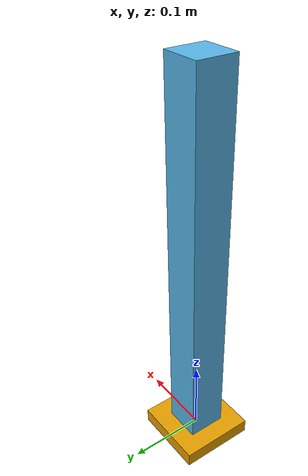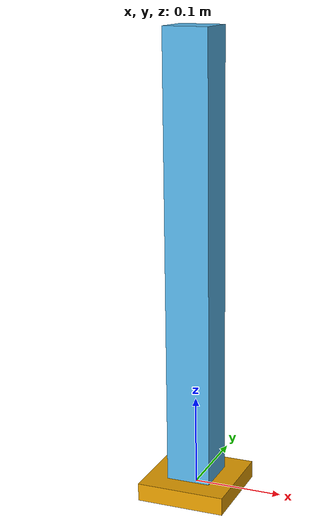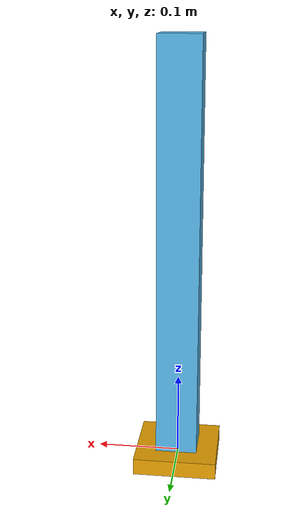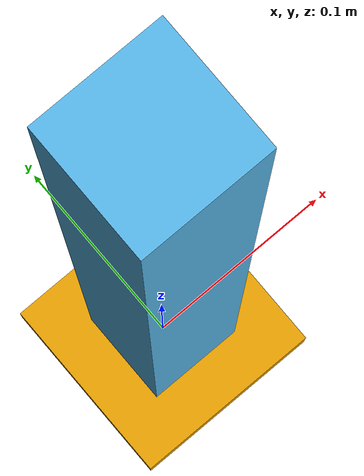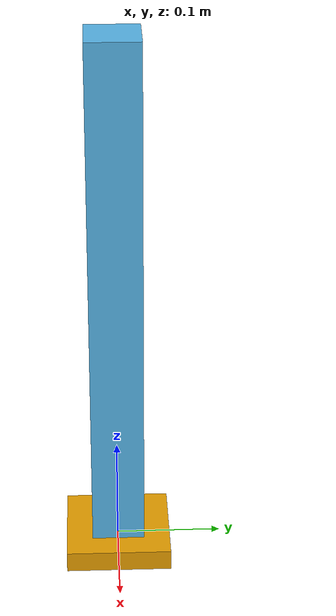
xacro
<?xml version="1.0"?>
<robot name="one_link" xmlns:xacro="http://www.ros.org/wiki/xacro">
  <!-- base_link 固定在世界，link1 由一個 revolute 關節連接，努力控制 -->
  <link name="base_link">
    <inertial><origin xyz="0 0 0" rpy="0 0 0"/><mass value="1"/><inertia ixx="1" iyy="1" izz="1" ixy="0" ixz="0" iyz="0"/></inertial>
    <visual><geometry><box size="0.1 0.1 0.02"/></geometry></visual>
    <collision><geometry><box size="0.1 0.1 0.02"/></geometry></collision>
  </link>

  <link name="link1">
    <inertial><origin xyz="0 0 0.25" rpy="0 0 0"/><mass value="1.0"/>
      <inertia ixx="0.02" iyy="0.02" izz="0.02" ixy="0" ixz="0" iyz="0"/></inertial>
    <visual><origin xyz="0 0 0.25"/><geometry><box size="0.05 0.05 0.5"/></geometry></visual>
    <collision><origin xyz="0 0 0.25"/><geometry><box size="0.05 0.05 0.5"/></geometry></collision>
  </link>

  <joint name="joint0" type="revolute">
    <parent link="base_link"/>
    <child link="link1"/>
    <origin xyz="0 0 0.01" rpy="0 0 0"/>
    <axis xyz="0 1 0"/>
    <limit effort="50" lower="-3.1416" upper="3.1416" velocity="10"/>
    <dynamics damping="0.1" friction="0.0"/>
  </joint>

  <!-- ros2_control 介面宣告（Gazebo Classic 需要） -->
  <transmission name="joint0_trans">
    <type>transmission_interface/SimpleTransmission</type>
    <joint name="joint0">
      <hardwareInterface>hardware_interface/effort</hardwareInterface>
    </joint>
    <actuator name="joint0_motor">
      <hardwareInterface>hardware_interface/effort</hardwareInterface>
      <mechanicalReduction>1</mechanicalReduction>
    </actuator>
  </transmission>

  <!-- gazebo_ros2_control plugin 掛在 robot 根節點 -->
  <gazebo>
    <plugin name="gazebo_ros2_control" filename="libgazebo_ros2_control.so"/>
  </gazebo>
</robot>
